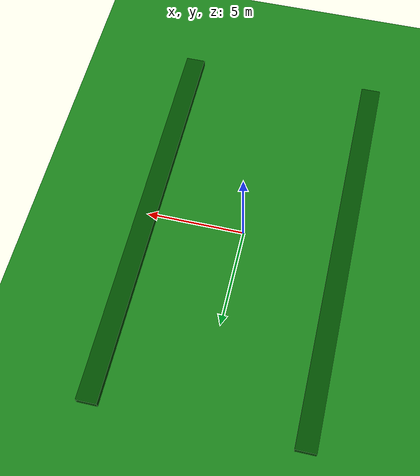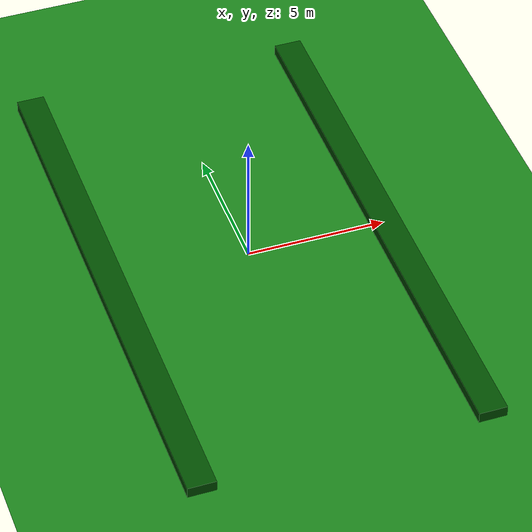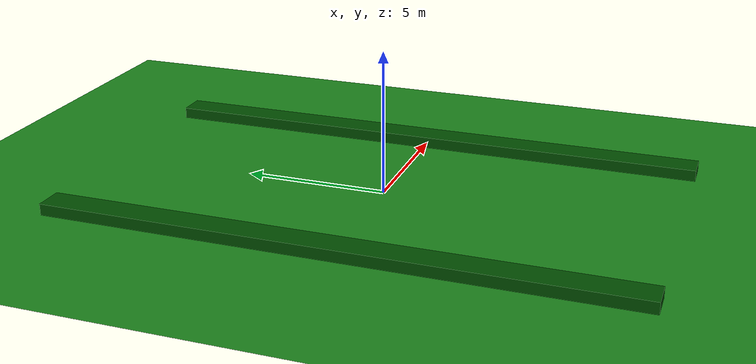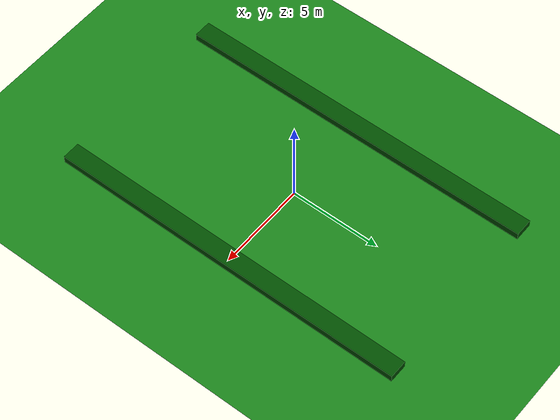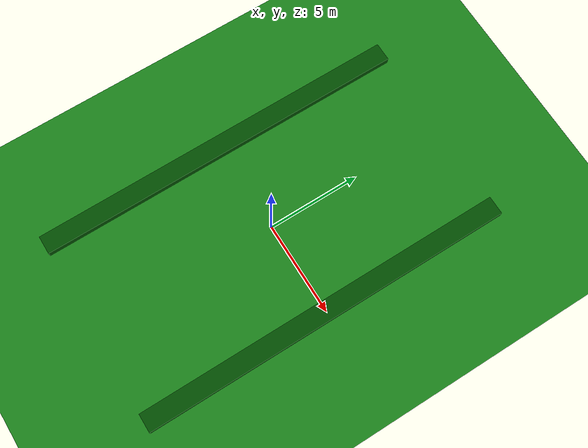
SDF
<?xml version="1.0" ?>
<sdf version="1.9">
  <world name="bihar_farm">
    <physics name="1ms" type="ignored">
      <max_step_size>0.001</max_step_size>
      <real_time_factor>1.0</real_time_factor>
    </physics>
    <plugin filename="gz-sim-physics-system" name="gz::sim::systems::Physics"></plugin>
    <plugin filename="gz-sim-user-commands-system" name="gz::sim::systems::UserCommands"></plugin>
    <plugin filename="gz-sim-scene-broadcaster-system" name="gz::sim::systems::SceneBroadcaster"></plugin>
    <plugin filename="gz-sim-wind-system" name="gz::sim::systems::Wind"></plugin>
    <!-- Removed ogre2 tag to fix Sensor Missing error -->
    <plugin filename="gz-sim-sensors-system" name="gz::sim::systems::Sensors"></plugin>
    <plugin filename="gz-sim-imu-system" name="gz::sim::systems::Imu"></plugin>

    <light type="directional" name="sun">
      <cast_shadows>true</cast_shadows>
      <pose>0 0 10 0 0 0</pose>
      <diffuse>0.8 0.8 0.8 1</diffuse>
      <specular>0.2 0.2 0.2 1</specular>
      <direction>-0.5 0.1 -0.9</direction>
    </light>

    <model name="ground_plane">
      <static>true</static>
      <link name="link">
        <collision name="collision"><geometry><plane><normal>0 0 1</normal><size>1000 1000</size></plane></geometry></collision>
        <visual name="visual">
          <geometry><plane><normal>0 0 1</normal><size>1000 1000</size></plane></geometry>
          <material>
            <ambient>0.1 0.5 0.1 1</ambient>
            <diffuse>0.1 0.5 0.1 1</diffuse>
            <specular>0.1 0.5 0.1 1</specular>
          </material>
        </visual>
      </link>
    </model>

    <!-- Crop Rows for Visual Realism -->
    <model name="crop_row_1">
      <static>true</static>
      <pose>5 0 0.2 0 0 0</pose>
      <link name="link">
        <visual name="visual">
          <geometry><box><size>1 20 0.4</size></box></geometry>
          <material><ambient>0.0 0.3 0.0 1</ambient><diffuse>0.0 0.3 0.0 1</diffuse></material>
        </visual>
      </link>
    </model>
    <model name="crop_row_2">
      <static>true</static>
      <pose>-5 0 0.2 0 0 0</pose>
      <link name="link">
        <visual name="visual">
          <geometry><box><size>1 20 0.4</size></box></geometry>
          <material><ambient>0.0 0.3 0.0 1</ambient><diffuse>0.0 0.3 0.0 1</diffuse></material>
        </visual>
      </link>
    </model>
  </world>
</sdf>
